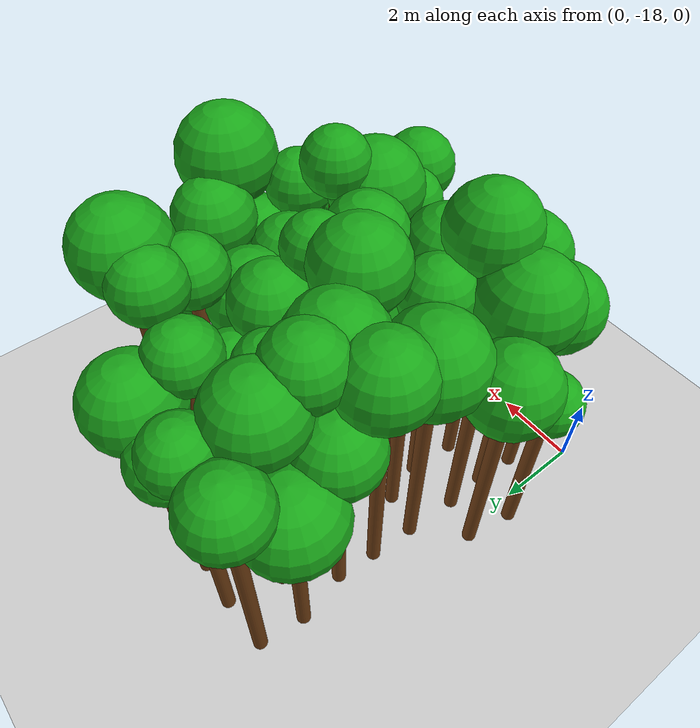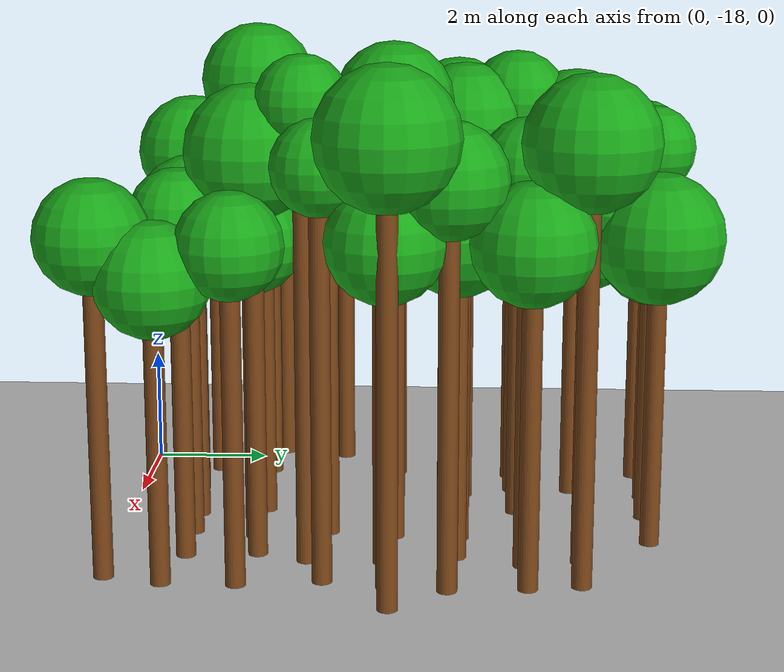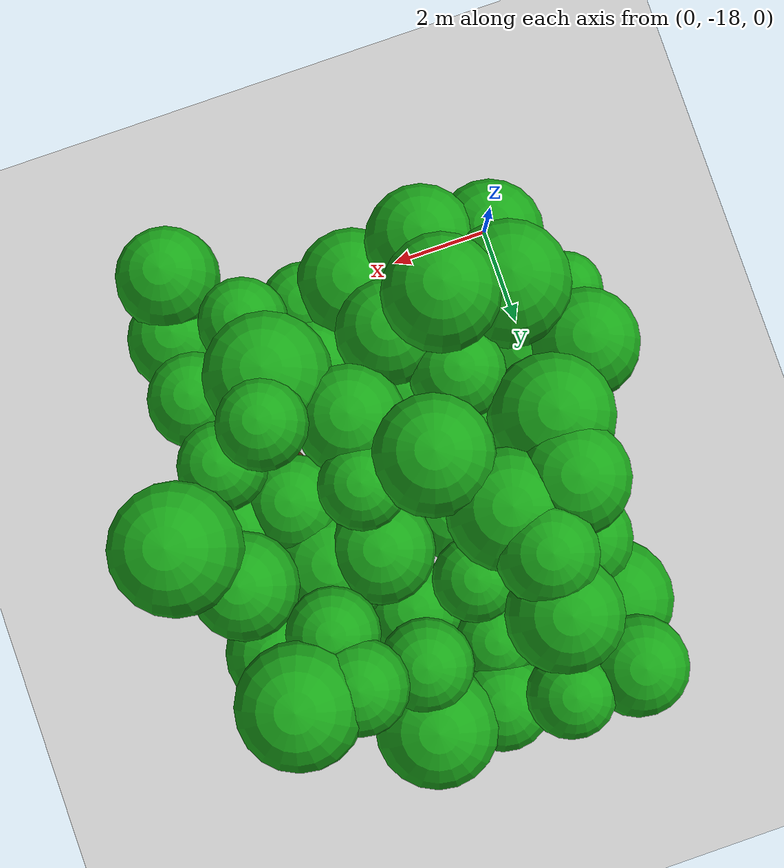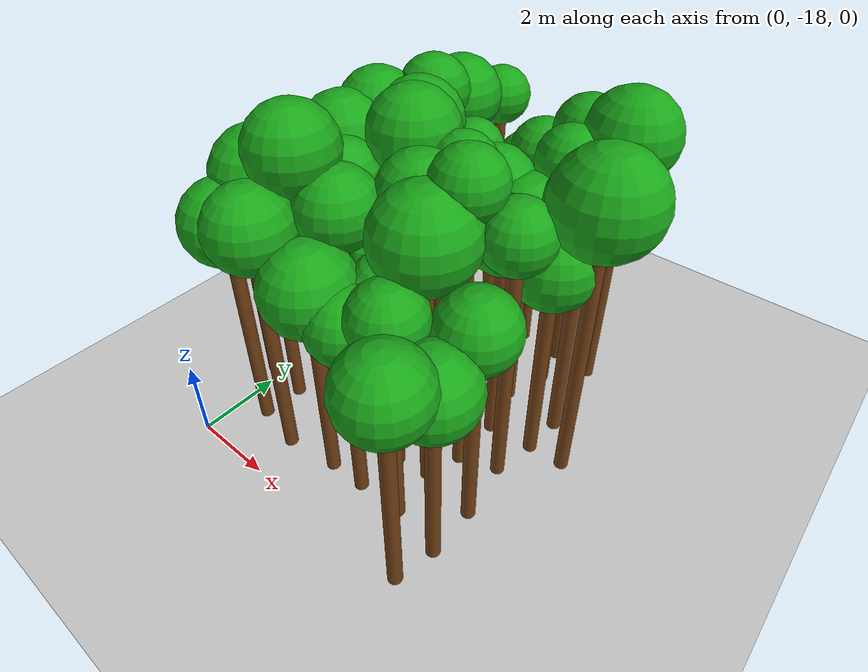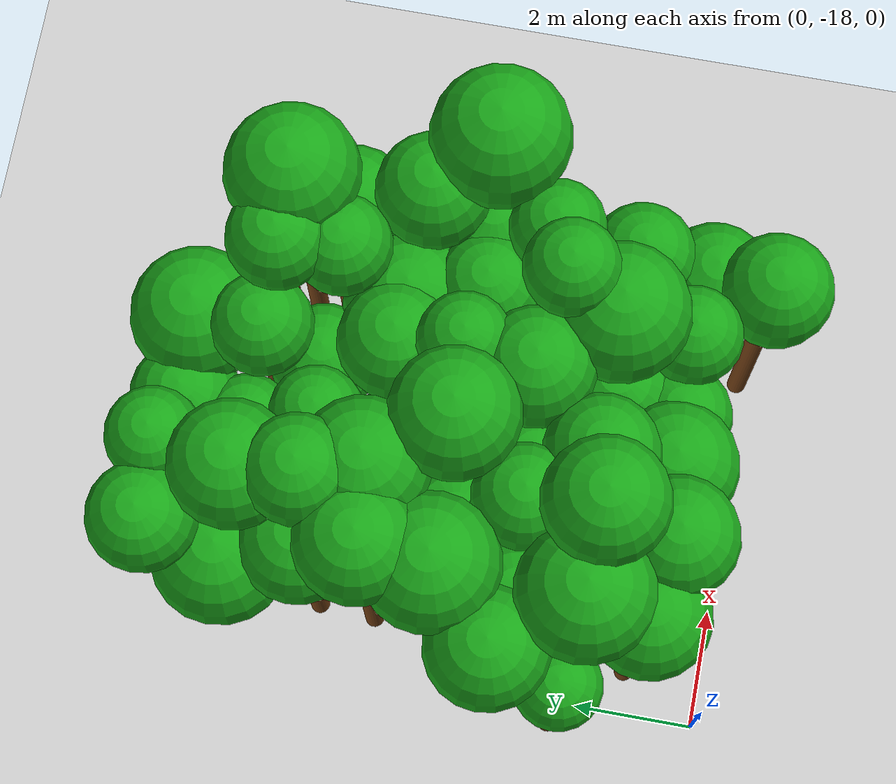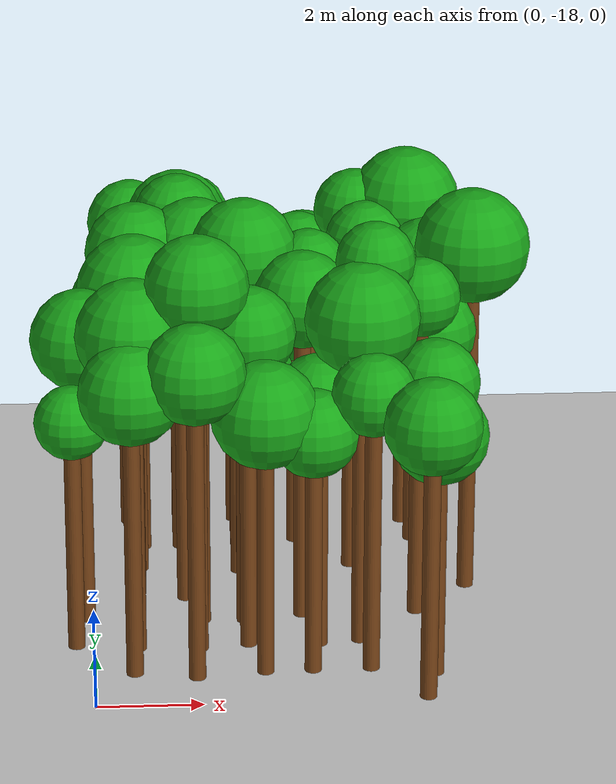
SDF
<sdf version="1.6">
 <world name="forest_world">
  <include><uri>model://sun</uri></include>
  <include><uri>model://ground_plane</uri></include>
  <model name="tree_1490_trunk">
   <static>true</static>
   <pose>-0.35 -15.59 2.12 0 0 0</pose>
   <link name="link">
    <collision name="collision">
     <geometry><cylinder><radius>0.16</radius><length>4.23</length></cylinder></geometry>
    </collision>
    <visual name="visual">
     <geometry><cylinder><radius>0.16</radius><length>4.23</length></cylinder></geometry>
     <material><ambient>0.35 0.20 0.05 1</ambient><diffuse>0.45 0.25 0.08 1</diffuse></material>
    </visual>
   </link>
  </model>
  <model name="tree_1490_leaf">
   <static>true</static>
   <pose>-0.35 -15.59 4.66 0 0 0</pose>
   <link name="link">
    <collision name="collision"><geometry><sphere><radius>0.70</radius></sphere></geometry></collision>
    <visual name="visual">
     <geometry><sphere><radius>0.70</radius></sphere></geometry>
     <material><ambient>0.05 0.45 0.05 1</ambient><diffuse>0.10 0.65 0.10 1</diffuse></material>
    </visual>
   </link>
  </model>
  <model name="tree_1491_trunk">
   <static>true</static>
   <pose>-0.15 -14.46 2.63 0 0 0</pose>
   <link name="link">
    <collision name="collision">
     <geometry><cylinder><radius>0.16</radius><length>5.27</length></cylinder></geometry>
    </collision>
    <visual name="visual">
     <geometry><cylinder><radius>0.16</radius><length>5.27</length></cylinder></geometry>
     <material><ambient>0.35 0.20 0.05 1</ambient><diffuse>0.45 0.25 0.08 1</diffuse></material>
    </visual>
   </link>
  </model>
  <model name="tree_1491_leaf">
   <static>true</static>
   <pose>-0.15 -14.46 5.84 0 0 0</pose>
   <link name="link">
    <collision name="collision"><geometry><sphere><radius>0.96</radius></sphere></geometry></collision>
    <visual name="visual">
     <geometry><sphere><radius>0.96</radius></sphere></geometry>
     <material><ambient>0.05 0.45 0.05 1</ambient><diffuse>0.10 0.65 0.10 1</diffuse></material>
    </visual>
   </link>
  </model>
  <model name="tree_1538_trunk">
   <static>true</static>
   <pose>0.74 -16.73 2.57 0 0 0</pose>
   <link name="link">
    <collision name="collision">
     <geometry><cylinder><radius>0.16</radius><length>5.14</length></cylinder></geometry>
    </collision>
    <visual name="visual">
     <geometry><cylinder><radius>0.16</radius><length>5.14</length></cylinder></geometry>
     <material><ambient>0.35 0.20 0.05 1</ambient><diffuse>0.45 0.25 0.08 1</diffuse></material>
    </visual>
   </link>
  </model>
  <model name="tree_1538_leaf">
   <static>true</static>
   <pose>0.74 -16.73 5.72 0 0 0</pose>
   <link name="link">
    <collision name="collision"><geometry><sphere><radius>0.96</radius></sphere></geometry></collision>
    <visual name="visual">
     <geometry><sphere><radius>0.96</radius></sphere></geometry>
     <material><ambient>0.05 0.45 0.05 1</ambient><diffuse>0.10 0.65 0.10 1</diffuse></material>
    </visual>
   </link>
  </model>
  <model name="tree_1539_trunk">
   <static>true</static>
   <pose>0.81 -15.74 2.90 0 0 0</pose>
   <link name="link">
    <collision name="collision">
     <geometry><cylinder><radius>0.16</radius><length>5.79</length></cylinder></geometry>
    </collision>
    <visual name="visual">
     <geometry><cylinder><radius>0.16</radius><length>5.79</length></cylinder></geometry>
     <material><ambient>0.35 0.20 0.05 1</ambient><diffuse>0.45 0.25 0.08 1</diffuse></material>
    </visual>
   </link>
  </model>
  <model name="tree_1539_leaf">
   <static>true</static>
   <pose>0.81 -15.74 6.43 0 0 0</pose>
   <link name="link">
    <collision name="collision"><geometry><sphere><radius>1.07</radius></sphere></geometry></collision>
    <visual name="visual">
     <geometry><sphere><radius>1.07</radius></sphere></geometry>
     <material><ambient>0.05 0.45 0.05 1</ambient><diffuse>0.10 0.65 0.10 1</diffuse></material>
    </visual>
   </link>
  </model>
  <model name="tree_1540_trunk">
   <static>true</static>
   <pose>0.77 -14.73 2.34 0 0 0</pose>
   <link name="link">
    <collision name="collision">
     <geometry><cylinder><radius>0.16</radius><length>4.68</length></cylinder></geometry>
    </collision>
    <visual name="visual">
     <geometry><cylinder><radius>0.16</radius><length>4.68</length></cylinder></geometry>
     <material><ambient>0.35 0.20 0.05 1</ambient><diffuse>0.45 0.25 0.08 1</diffuse></material>
    </visual>
   </link>
  </model>
  <model name="tree_1540_leaf">
   <static>true</static>
   <pose>0.77 -14.73 5.23 0 0 0</pose>
   <link name="link">
    <collision name="collision"><geometry><sphere><radius>0.91</radius></sphere></geometry></collision>
    <visual name="visual">
     <geometry><sphere><radius>0.91</radius></sphere></geometry>
     <material><ambient>0.05 0.45 0.05 1</ambient><diffuse>0.10 0.65 0.10 1</diffuse></material>
    </visual>
   </link>
  </model>
  <model name="tree_1541_trunk">
   <static>true</static>
   <pose>0.84 -13.44 2.88 0 0 0</pose>
   <link name="link">
    <collision name="collision">
     <geometry><cylinder><radius>0.16</radius><length>5.75</length></cylinder></geometry>
    </collision>
    <visual name="visual">
     <geometry><cylinder><radius>0.16</radius><length>5.75</length></cylinder></geometry>
     <material><ambient>0.35 0.20 0.05 1</ambient><diffuse>0.45 0.25 0.08 1</diffuse></material>
    </visual>
   </link>
  </model>
  <model name="tree_1541_leaf">
   <static>true</static>
   <pose>0.84 -13.44 6.39 0 0 0</pose>
   <link name="link">
    <collision name="collision"><geometry><sphere><radius>1.07</radius></sphere></geometry></collision>
    <visual name="visual">
     <geometry><sphere><radius>1.07</radius></sphere></geometry>
     <material><ambient>0.05 0.45 0.05 1</ambient><diffuse>0.10 0.65 0.10 1</diffuse></material>
    </visual>
   </link>
  </model>
  <model name="tree_1542_trunk">
   <static>true</static>
   <pose>0.90 -12.36 3.08 0 0 0</pose>
   <link name="link">
    <collision name="collision">
     <geometry><cylinder><radius>0.16</radius><length>6.16</length></cylinder></geometry>
    </collision>
    <visual name="visual">
     <geometry><cylinder><radius>0.16</radius><length>6.16</length></cylinder></geometry>
     <material><ambient>0.35 0.20 0.05 1</ambient><diffuse>0.45 0.25 0.08 1</diffuse></material>
    </visual>
   </link>
  </model>
  <model name="tree_1542_leaf">
   <static>true</static>
   <pose>0.90 -12.36 6.73 0 0 0</pose>
   <link name="link">
    <collision name="collision"><geometry><sphere><radius>0.96</radius></sphere></geometry></collision>
    <visual name="visual">
     <geometry><sphere><radius>0.96</radius></sphere></geometry>
     <material><ambient>0.05 0.45 0.05 1</ambient><diffuse>0.10 0.65 0.10 1</diffuse></material>
    </visual>
   </link>
  </model>
  <model name="tree_1543_trunk">
   <static>true</static>
   <pose>0.97 -11.39 2.42 0 0 0</pose>
   <link name="link">
    <collision name="collision">
     <geometry><cylinder><radius>0.16</radius><length>4.83</length></cylinder></geometry>
    </collision>
    <visual name="visual">
     <geometry><cylinder><radius>0.16</radius><length>4.83</length></cylinder></geometry>
     <material><ambient>0.35 0.20 0.05 1</ambient><diffuse>0.45 0.25 0.08 1</diffuse></material>
    </visual>
   </link>
  </model>
  <model name="tree_1543_leaf">
   <static>true</static>
   <pose>0.97 -11.39 5.40 0 0 0</pose>
   <link name="link">
    <collision name="collision"><geometry><sphere><radius>0.94</radius></sphere></geometry></collision>
    <visual name="visual">
     <geometry><sphere><radius>0.94</radius></sphere></geometry>
     <material><ambient>0.05 0.45 0.05 1</ambient><diffuse>0.10 0.65 0.10 1</diffuse></material>
    </visual>
   </link>
  </model>
  <model name="tree_1544_trunk">
   <static>true</static>
   <pose>0.70 -10.19 2.05 0 0 0</pose>
   <link name="link">
    <collision name="collision">
     <geometry><cylinder><radius>0.16</radius><length>4.11</length></cylinder></geometry>
    </collision>
    <visual name="visual">
     <geometry><cylinder><radius>0.16</radius><length>4.11</length></cylinder></geometry>
     <material><ambient>0.35 0.20 0.05 1</ambient><diffuse>0.45 0.25 0.08 1</diffuse></material>
    </visual>
   </link>
  </model>
  <model name="tree_1544_leaf">
   <static>true</static>
   <pose>0.70 -10.19 4.76 0 0 0</pose>
   <link name="link">
    <collision name="collision"><geometry><sphere><radius>1.09</radius></sphere></geometry></collision>
    <visual name="visual">
     <geometry><sphere><radius>1.09</radius></sphere></geometry>
     <material><ambient>0.05 0.45 0.05 1</ambient><diffuse>0.10 0.65 0.10 1</diffuse></material>
    </visual>
   </link>
  </model>
  <model name="tree_1545_trunk">
   <static>true</static>
   <pose>0.83 -9.12 2.79 0 0 0</pose>
   <link name="link">
    <collision name="collision">
     <geometry><cylinder><radius>0.16</radius><length>5.58</length></cylinder></geometry>
    </collision>
    <visual name="visual">
     <geometry><cylinder><radius>0.16</radius><length>5.58</length></cylinder></geometry>
     <material><ambient>0.35 0.20 0.05 1</ambient><diffuse>0.45 0.25 0.08 1</diffuse></material>
    </visual>
   </link>
  </model>
  <model name="tree_1545_leaf">
   <static>true</static>
   <pose>0.83 -9.12 6.09 0 0 0</pose>
   <link name="link">
    <collision name="collision"><geometry><sphere><radius>0.85</radius></sphere></geometry></collision>
    <visual name="visual">
     <geometry><sphere><radius>0.85</radius></sphere></geometry>
     <material><ambient>0.05 0.45 0.05 1</ambient><diffuse>0.10 0.65 0.10 1</diffuse></material>
    </visual>
   </link>
  </model>
  <model name="tree_1588_trunk">
   <static>true</static>
   <pose>1.90 -16.94 2.81 0 0 0</pose>
   <link name="link">
    <collision name="collision">
     <geometry><cylinder><radius>0.16</radius><length>5.61</length></cylinder></geometry>
    </collision>
    <visual name="visual">
     <geometry><cylinder><radius>0.16</radius><length>5.61</length></cylinder></geometry>
     <material><ambient>0.35 0.20 0.05 1</ambient><diffuse>0.45 0.25 0.08 1</diffuse></material>
    </visual>
   </link>
  </model>
  <model name="tree_1588_leaf">
   <static>true</static>
   <pose>1.90 -16.94 6.17 0 0 0</pose>
   <link name="link">
    <collision name="collision"><geometry><sphere><radius>0.94</radius></sphere></geometry></collision>
    <visual name="visual">
     <geometry><sphere><radius>0.94</radius></sphere></geometry>
     <material><ambient>0.05 0.45 0.05 1</ambient><diffuse>0.10 0.65 0.10 1</diffuse></material>
    </visual>
   </link>
  </model>
  <model name="tree_1589_trunk">
   <static>true</static>
   <pose>1.98 -15.79 3.41 0 0 0</pose>
   <link name="link">
    <collision name="collision">
     <geometry><cylinder><radius>0.16</radius><length>6.82</length></cylinder></geometry>
    </collision>
    <visual name="visual">
     <geometry><cylinder><radius>0.16</radius><length>6.82</length></cylinder></geometry>
     <material><ambient>0.35 0.20 0.05 1</ambient><diffuse>0.45 0.25 0.08 1</diffuse></material>
    </visual>
   </link>
  </model>
  <model name="tree_1589_leaf">
   <static>true</static>
   <pose>1.98 -15.79 7.40 0 0 0</pose>
   <link name="link">
    <collision name="collision"><geometry><sphere><radius>0.96</radius></sphere></geometry></collision>
    <visual name="visual">
     <geometry><sphere><radius>0.96</radius></sphere></geometry>
     <material><ambient>0.05 0.45 0.05 1</ambient><diffuse>0.10 0.65 0.10 1</diffuse></material>
    </visual>
   </link>
  </model>
  <model name="tree_1590_trunk">
   <static>true</static>
   <pose>2.06 -14.63 2.94 0 0 0</pose>
   <link name="link">
    <collision name="collision">
     <geometry><cylinder><radius>0.16</radius><length>5.88</length></cylinder></geometry>
    </collision>
    <visual name="visual">
     <geometry><cylinder><radius>0.16</radius><length>5.88</length></cylinder></geometry>
     <material><ambient>0.35 0.20 0.05 1</ambient><diffuse>0.45 0.25 0.08 1</diffuse></material>
    </visual>
   </link>
  </model>
  <model name="tree_1590_leaf">
   <static>true</static>
   <pose>2.06 -14.63 6.37 0 0 0</pose>
   <link name="link">
    <collision name="collision"><geometry><sphere><radius>0.81</radius></sphere></geometry></collision>
    <visual name="visual">
     <geometry><sphere><radius>0.81</radius></sphere></geometry>
     <material><ambient>0.05 0.45 0.05 1</ambient><diffuse>0.10 0.65 0.10 1</diffuse></material>
    </visual>
   </link>
  </model>
  <model name="tree_1591_trunk">
   <static>true</static>
   <pose>1.76 -13.66 2.14 0 0 0</pose>
   <link name="link">
    <collision name="collision">
     <geometry><cylinder><radius>0.16</radius><length>4.27</length></cylinder></geometry>
    </collision>
    <visual name="visual">
     <geometry><cylinder><radius>0.16</radius><length>4.27</length></cylinder></geometry>
     <material><ambient>0.35 0.20 0.05 1</ambient><diffuse>0.45 0.25 0.08 1</diffuse></material>
    </visual>
   </link>
  </model>
  <model name="tree_1591_leaf">
   <static>true</static>
   <pose>1.76 -13.66 4.88 0 0 0</pose>
   <link name="link">
    <collision name="collision"><geometry><sphere><radius>1.01</radius></sphere></geometry></collision>
    <visual name="visual">
     <geometry><sphere><radius>1.01</radius></sphere></geometry>
     <material><ambient>0.05 0.45 0.05 1</ambient><diffuse>0.10 0.65 0.10 1</diffuse></material>
    </visual>
   </link>
  </model>
  <model name="tree_1592_trunk">
   <static>true</static>
   <pose>2.05 -12.24 3.05 0 0 0</pose>
   <link name="link">
    <collision name="collision">
     <geometry><cylinder><radius>0.16</radius><length>6.09</length></cylinder></geometry>
    </collision>
    <visual name="visual">
     <geometry><cylinder><radius>0.16</radius><length>6.09</length></cylinder></geometry>
     <material><ambient>0.35 0.20 0.05 1</ambient><diffuse>0.45 0.25 0.08 1</diffuse></material>
    </visual>
   </link>
  </model>
  <model name="tree_1592_leaf">
   <static>true</static>
   <pose>2.05 -12.24 6.70 0 0 0</pose>
   <link name="link">
    <collision name="collision"><geometry><sphere><radius>1.02</radius></sphere></geometry></collision>
    <visual name="visual">
     <geometry><sphere><radius>1.02</radius></sphere></geometry>
     <material><ambient>0.05 0.45 0.05 1</ambient><diffuse>0.10 0.65 0.10 1</diffuse></material>
    </visual>
   </link>
  </model>
  <model name="tree_1593_trunk">
   <static>true</static>
   <pose>1.72 -11.36 3.27 0 0 0</pose>
   <link name="link">
    <collision name="collision">
     <geometry><cylinder><radius>0.16</radius><length>6.54</length></cylinder></geometry>
    </collision>
    <visual name="visual">
     <geometry><cylinder><radius>0.16</radius><length>6.54</length></cylinder></geometry>
     <material><ambient>0.35 0.20 0.05 1</ambient><diffuse>0.45 0.25 0.08 1</diffuse></material>
    </visual>
   </link>
  </model>
  <model name="tree_1593_leaf">
   <static>true</static>
   <pose>1.72 -11.36 7.05 0 0 0</pose>
   <link name="link">
    <collision name="collision"><geometry><sphere><radius>0.84</radius></sphere></geometry></collision>
    <visual name="visual">
     <geometry><sphere><radius>0.84</radius></sphere></geometry>
     <material><ambient>0.05 0.45 0.05 1</ambient><diffuse>0.10 0.65 0.10 1</diffuse></material>
    </visual>
   </link>
  </model>
  <model name="tree_1594_trunk">
   <static>true</static>
   <pose>1.73 -10.34 3.01 0 0 0</pose>
   <link name="link">
    <collision name="collision">
     <geometry><cylinder><radius>0.16</radius><length>6.02</length></cylinder></geometry>
    </collision>
    <visual name="visual">
     <geometry><cylinder><radius>0.16</radius><length>6.02</length></cylinder></geometry>
     <material><ambient>0.35 0.20 0.05 1</ambient><diffuse>0.45 0.25 0.08 1</diffuse></material>
    </visual>
   </link>
  </model>
  <model name="tree_1594_leaf">
   <static>true</static>
   <pose>1.73 -10.34 6.60 0 0 0</pose>
   <link name="link">
    <collision name="collision"><geometry><sphere><radius>0.98</radius></sphere></geometry></collision>
    <visual name="visual">
     <geometry><sphere><radius>0.98</radius></sphere></geometry>
     <material><ambient>0.05 0.45 0.05 1</ambient><diffuse>0.10 0.65 0.10 1</diffuse></material>
    </visual>
   </link>
  </model>
  <model name="tree_1595_trunk">
   <static>true</static>
   <pose>2.03 -9.06 2.91 0 0 0</pose>
   <link name="link">
    <collision name="collision">
     <geometry><cylinder><radius>0.16</radius><length>5.82</length></cylinder></geometry>
    </collision>
    <visual name="visual">
     <geometry><cylinder><radius>0.16</radius><length>5.82</length></cylinder></geometry>
     <material><ambient>0.35 0.20 0.05 1</ambient><diffuse>0.45 0.25 0.08 1</diffuse></material>
    </visual>
   </link>
  </model>
  <model name="tree_1595_leaf">
   <static>true</static>
   <pose>2.03 -9.06 6.26 0 0 0</pose>
   <link name="link">
    <collision name="collision"><geometry><sphere><radius>0.74</radius></sphere></geometry></collision>
    <visual name="visual">
     <geometry><sphere><radius>0.74</radius></sphere></geometry>
     <material><ambient>0.05 0.45 0.05 1</ambient><diffuse>0.10 0.65 0.10 1</diffuse></material>
    </visual>
   </link>
  </model>
  <model name="tree_1639_trunk">
   <static>true</static>
   <pose>3.18 -16.76 2.33 0 0 0</pose>
   <link name="link">
    <collision name="collision">
     <geometry><cylinder><radius>0.16</radius><length>4.66</length></cylinder></geometry>
    </collision>
    <visual name="visual">
     <geometry><cylinder><radius>0.16</radius><length>4.66</length></cylinder></geometry>
     <material><ambient>0.35 0.20 0.05 1</ambient><diffuse>0.45 0.25 0.08 1</diffuse></material>
    </visual>
   </link>
  </model>
  <model name="tree_1639_leaf">
   <static>true</static>
   <pose>3.18 -16.76 5.27 0 0 0</pose>
   <link name="link">
    <collision name="collision"><geometry><sphere><radius>1.01</radius></sphere></geometry></collision>
    <visual name="visual">
     <geometry><sphere><radius>1.01</radius></sphere></geometry>
     <material><ambient>0.05 0.45 0.05 1</ambient><diffuse>0.10 0.65 0.10 1</diffuse></material>
    </visual>
   </link>
  </model>
  <model name="tree_1640_trunk">
   <static>true</static>
   <pose>2.91 -15.63 2.93 0 0 0</pose>
   <link name="link">
    <collision name="collision">
     <geometry><cylinder><radius>0.16</radius><length>5.87</length></cylinder></geometry>
    </collision>
    <visual name="visual">
     <geometry><cylinder><radius>0.16</radius><length>5.87</length></cylinder></geometry>
     <material><ambient>0.35 0.20 0.05 1</ambient><diffuse>0.45 0.25 0.08 1</diffuse></material>
    </visual>
   </link>
  </model>
  <model name="tree_1640_leaf">
   <static>true</static>
   <pose>2.91 -15.63 6.40 0 0 0</pose>
   <link name="link">
    <collision name="collision"><geometry><sphere><radius>0.89</radius></sphere></geometry></collision>
    <visual name="visual">
     <geometry><sphere><radius>0.89</radius></sphere></geometry>
     <material><ambient>0.05 0.45 0.05 1</ambient><diffuse>0.10 0.65 0.10 1</diffuse></material>
    </visual>
   </link>
  </model>
  <model name="tree_1641_trunk">
   <static>true</static>
   <pose>2.88 -14.65 2.26 0 0 0</pose>
   <link name="link">
    <collision name="collision">
     <geometry><cylinder><radius>0.16</radius><length>4.53</length></cylinder></geometry>
    </collision>
    <visual name="visual">
     <geometry><cylinder><radius>0.16</radius><length>4.53</length></cylinder></geometry>
     <material><ambient>0.35 0.20 0.05 1</ambient><diffuse>0.45 0.25 0.08 1</diffuse></material>
    </visual>
   </link>
  </model>
  <model name="tree_1641_leaf">
   <static>true</static>
   <pose>2.88 -14.65 5.09 0 0 0</pose>
   <link name="link">
    <collision name="collision"><geometry><sphere><radius>0.94</radius></sphere></geometry></collision>
    <visual name="visual">
     <geometry><sphere><radius>0.94</radius></sphere></geometry>
     <material><ambient>0.05 0.45 0.05 1</ambient><diffuse>0.10 0.65 0.10 1</diffuse></material>
    </visual>
   </link>
  </model>
  <model name="tree_1642_trunk">
   <static>true</static>
   <pose>2.92 -13.43 3.27 0 0 0</pose>
   <link name="link">
    <collision name="collision">
     <geometry><cylinder><radius>0.16</radius><length>6.54</length></cylinder></geometry>
    </collision>
    <visual name="visual">
     <geometry><cylinder><radius>0.16</radius><length>6.54</length></cylinder></geometry>
     <material><ambient>0.35 0.20 0.05 1</ambient><diffuse>0.45 0.25 0.08 1</diffuse></material>
    </visual>
   </link>
  </model>
  <model name="tree_1642_leaf">
   <static>true</static>
   <pose>2.92 -13.43 7.15 0 0 0</pose>
   <link name="link">
    <collision name="collision"><geometry><sphere><radius>1.00</radius></sphere></geometry></collision>
    <visual name="visual">
     <geometry><sphere><radius>1.00</radius></sphere></geometry>
     <material><ambient>0.05 0.45 0.05 1</ambient><diffuse>0.10 0.65 0.10 1</diffuse></material>
    </visual>
   </link>
  </model>
  <model name="tree_1643_trunk">
   <static>true</static>
   <pose>2.84 -12.52 2.36 0 0 0</pose>
   <link name="link">
    <collision name="collision">
     <geometry><cylinder><radius>0.16</radius><length>4.72</length></cylinder></geometry>
    </collision>
    <visual name="visual">
     <geometry><cylinder><radius>0.16</radius><length>4.72</length></cylinder></geometry>
     <material><ambient>0.35 0.20 0.05 1</ambient><diffuse>0.45 0.25 0.08 1</diffuse></material>
    </visual>
   </link>
  </model>
  <model name="tree_1643_leaf">
   <static>true</static>
   <pose>2.84 -12.52 5.21 0 0 0</pose>
   <link name="link">
    <collision name="collision"><geometry><sphere><radius>0.82</radius></sphere></geometry></collision>
    <visual name="visual">
     <geometry><sphere><radius>0.82</radius></sphere></geometry>
     <material><ambient>0.05 0.45 0.05 1</ambient><diffuse>0.10 0.65 0.10 1</diffuse></material>
    </visual>
   </link>
  </model>
  <model name="tree_1644_trunk">
   <static>true</static>
   <pose>2.87 -11.33 2.74 0 0 0</pose>
   <link name="link">
    <collision name="collision">
     <geometry><cylinder><radius>0.16</radius><length>5.48</length></cylinder></geometry>
    </collision>
    <visual name="visual">
     <geometry><cylinder><radius>0.16</radius><length>5.48</length></cylinder></geometry>
     <material><ambient>0.35 0.20 0.05 1</ambient><diffuse>0.45 0.25 0.08 1</diffuse></material>
    </visual>
   </link>
  </model>
  <model name="tree_1644_leaf">
   <static>true</static>
   <pose>2.87 -11.33 5.92 0 0 0</pose>
   <link name="link">
    <collision name="collision"><geometry><sphere><radius>0.73</radius></sphere></geometry></collision>
    <visual name="visual">
     <geometry><sphere><radius>0.73</radius></sphere></geometry>
     <material><ambient>0.05 0.45 0.05 1</ambient><diffuse>0.10 0.65 0.10 1</diffuse></material>
    </visual>
   </link>
  </model>
  <model name="tree_1645_trunk">
   <static>true</static>
   <pose>2.83 -10.18 2.14 0 0 0</pose>
   <link name="link">
    <collision name="collision">
     <geometry><cylinder><radius>0.16</radius><length>4.27</length></cylinder></geometry>
    </collision>
    <visual name="visual">
     <geometry><cylinder><radius>0.16</radius><length>4.27</length></cylinder></geometry>
     <material><ambient>0.35 0.20 0.05 1</ambient><diffuse>0.45 0.25 0.08 1</diffuse></material>
    </visual>
   </link>
  </model>
  <model name="tree_1645_leaf">
   <static>true</static>
   <pose>2.83 -10.18 4.73 0 0 0</pose>
   <link name="link">
    <collision name="collision"><geometry><sphere><radius>0.76</radius></sphere></geometry></collision>
    <visual name="visual">
     <geometry><sphere><radius>0.76</radius></sphere></geometry>
     <material><ambient>0.05 0.45 0.05 1</ambient><diffuse>0.10 0.65 0.10 1</diffuse></material>
    </visual>
   </link>
  </model>
  <model name="tree_1646_trunk">
   <static>true</static>
   <pose>3.07 -9.13 2.08 0 0 0</pose>
   <link name="link">
    <collision name="collision">
     <geometry><cylinder><radius>0.16</radius><length>4.15</length></cylinder></geometry>
    </collision>
    <visual name="visual">
     <geometry><cylinder><radius>0.16</radius><length>4.15</length></cylinder></geometry>
     <material><ambient>0.35 0.20 0.05 1</ambient><diffuse>0.45 0.25 0.08 1</diffuse></material>
    </visual>
   </link>
  </model>
  <model name="tree_1646_leaf">
   <static>true</static>
   <pose>3.07 -9.13 4.68 0 0 0</pose>
   <link name="link">
    <collision name="collision"><geometry><sphere><radius>0.88</radius></sphere></geometry></collision>
    <visual name="visual">
     <geometry><sphere><radius>0.88</radius></sphere></geometry>
     <material><ambient>0.05 0.45 0.05 1</ambient><diffuse>0.10 0.65 0.10 1</diffuse></material>
    </visual>
   </link>
  </model>
  <model name="tree_1694_trunk">
   <static>true</static>
   <pose>4.07 -16.74 2.19 0 0 0</pose>
   <link name="link">
    <collision name="collision">
     <geometry><cylinder><radius>0.16</radius><length>4.37</length></cylinder></geometry>
    </collision>
    <visual name="visual">
     <geometry><cylinder><radius>0.16</radius><length>4.37</length></cylinder></geometry>
     <material><ambient>0.35 0.20 0.05 1</ambient><diffuse>0.45 0.25 0.08 1</diffuse></material>
    </visual>
   </link>
  </model>
  <model name="tree_1694_leaf">
   <static>true</static>
   <pose>4.07 -16.74 4.87 0 0 0</pose>
   <link name="link">
    <collision name="collision"><geometry><sphere><radius>0.83</radius></sphere></geometry></collision>
    <visual name="visual">
     <geometry><sphere><radius>0.83</radius></sphere></geometry>
     <material><ambient>0.05 0.45 0.05 1</ambient><diffuse>0.10 0.65 0.10 1</diffuse></material>
    </visual>
   </link>
  </model>
  <model name="tree_1695_trunk">
   <static>true</static>
   <pose>4.24 -15.69 2.27 0 0 0</pose>
   <link name="link">
    <collision name="collision">
     <geometry><cylinder><radius>0.16</radius><length>4.53</length></cylinder></geometry>
    </collision>
    <visual name="visual">
     <geometry><cylinder><radius>0.16</radius><length>4.53</length></cylinder></geometry>
     <material><ambient>0.35 0.20 0.05 1</ambient><diffuse>0.45 0.25 0.08 1</diffuse></material>
    </visual>
   </link>
  </model>
  <model name="tree_1695_leaf">
   <static>true</static>
   <pose>4.24 -15.69 5.06 0 0 0</pose>
   <link name="link">
    <collision name="collision"><geometry><sphere><radius>0.88</radius></sphere></geometry></collision>
    <visual name="visual">
     <geometry><sphere><radius>0.88</radius></sphere></geometry>
     <material><ambient>0.05 0.45 0.05 1</ambient><diffuse>0.10 0.65 0.10 1</diffuse></material>
    </visual>
   </link>
  </model>
  <model name="tree_1696_trunk">
   <static>true</static>
   <pose>3.98 -14.46 3.01 0 0 0</pose>
   <link name="link">
    <collision name="collision">
     <geometry><cylinder><radius>0.16</radius><length>6.02</length></cylinder></geometry>
    </collision>
    <visual name="visual">
     <geometry><cylinder><radius>0.16</radius><length>6.02</length></cylinder></geometry>
     <material><ambient>0.35 0.20 0.05 1</ambient><diffuse>0.45 0.25 0.08 1</diffuse></material>
    </visual>
   </link>
  </model>
  <model name="tree_1696_leaf">
   <static>true</static>
   <pose>3.98 -14.46 6.57 0 0 0</pose>
   <link name="link">
    <collision name="collision"><geometry><sphere><radius>0.92</radius></sphere></geometry></collision>
    <visual name="visual">
     <geometry><sphere><radius>0.92</radius></sphere></geometry>
     <material><ambient>0.05 0.45 0.05 1</ambient><diffuse>0.10 0.65 0.10 1</diffuse></material>
    </visual>
   </link>
  </model>
  <model name="tree_1697_trunk">
   <static>true</static>
   <pose>4.14 -13.36 3.17 0 0 0</pose>
   <link name="link">
    <collision name="collision">
     <geometry><cylinder><radius>0.16</radius><length>6.33</length></cylinder></geometry>
    </collision>
    <visual name="visual">
     <geometry><cylinder><radius>0.16</radius><length>6.33</length></cylinder></geometry>
     <material><ambient>0.35 0.20 0.05 1</ambient><diffuse>0.45 0.25 0.08 1</diffuse></material>
    </visual>
   </link>
  </model>
  <model name="tree_1697_leaf">
   <static>true</static>
   <pose>4.14 -13.36 6.77 0 0 0</pose>
   <link name="link">
    <collision name="collision"><geometry><sphere><radius>0.73</radius></sphere></geometry></collision>
    <visual name="visual">
     <geometry><sphere><radius>0.73</radius></sphere></geometry>
     <material><ambient>0.05 0.45 0.05 1</ambient><diffuse>0.10 0.65 0.10 1</diffuse></material>
    </visual>
   </link>
  </model>
  <model name="tree_1698_trunk">
   <static>true</static>
   <pose>4.20 -12.29 2.67 0 0 0</pose>
   <link name="link">
    <collision name="collision">
     <geometry><cylinder><radius>0.16</radius><length>5.33</length></cylinder></geometry>
    </collision>
    <visual name="visual">
     <geometry><cylinder><radius>0.16</radius><length>5.33</length></cylinder></geometry>
     <material><ambient>0.35 0.20 0.05 1</ambient><diffuse>0.45 0.25 0.08 1</diffuse></material>
    </visual>
   </link>
  </model>
  <model name="tree_1698_leaf">
   <static>true</static>
   <pose>4.20 -12.29 5.88 0 0 0</pose>
   <link name="link">
    <collision name="collision"><geometry><sphere><radius>0.91</radius></sphere></geometry></collision>
    <visual name="visual">
     <geometry><sphere><radius>0.91</radius></sphere></geometry>
     <material><ambient>0.05 0.45 0.05 1</ambient><diffuse>0.10 0.65 0.10 1</diffuse></material>
    </visual>
   </link>
  </model>
  <model name="tree_1699_trunk">
   <static>true</static>
   <pose>4.01 -11.17 2.16 0 0 0</pose>
   <link name="link">
    <collision name="collision">
     <geometry><cylinder><radius>0.16</radius><length>4.32</length></cylinder></geometry>
    </collision>
    <visual name="visual">
     <geometry><cylinder><radius>0.16</radius><length>4.32</length></cylinder></geometry>
     <material><ambient>0.35 0.20 0.05 1</ambient><diffuse>0.45 0.25 0.08 1</diffuse></material>
    </visual>
   </link>
  </model>
  <model name="tree_1699_leaf">
   <static>true</static>
   <pose>4.01 -11.17 4.84 0 0 0</pose>
   <link name="link">
    <collision name="collision"><geometry><sphere><radius>0.87</radius></sphere></geometry></collision>
    <visual name="visual">
     <geometry><sphere><radius>0.87</radius></sphere></geometry>
     <material><ambient>0.05 0.45 0.05 1</ambient><diffuse>0.10 0.65 0.10 1</diffuse></material>
    </visual>
   </link>
  </model>
  <model name="tree_1700_trunk">
   <static>true</static>
   <pose>4.11 -10.24 2.68 0 0 0</pose>
   <link name="link">
    <collision name="collision">
     <geometry><cylinder><radius>0.16</radius><length>5.37</length></cylinder></geometry>
    </collision>
    <visual name="visual">
     <geometry><cylinder><radius>0.16</radius><length>5.37</length></cylinder></geometry>
     <material><ambient>0.35 0.20 0.05 1</ambient><diffuse>0.45 0.25 0.08 1</diffuse></material>
    </visual>
   </link>
  </model>
  <model name="tree_1700_leaf">
   <static>true</static>
   <pose>4.11 -10.24 5.84 0 0 0</pose>
   <link name="link">
    <collision name="collision"><geometry><sphere><radius>0.80</radius></sphere></geometry></collision>
    <visual name="visual">
     <geometry><sphere><radius>0.80</radius></sphere></geometry>
     <material><ambient>0.05 0.45 0.05 1</ambient><diffuse>0.10 0.65 0.10 1</diffuse></material>
    </visual>
   </link>
  </model>
  <model name="tree_1701_trunk">
   <static>true</static>
   <pose>4.28 -9.14 2.25 0 0 0</pose>
   <link name="link">
    <collision name="collision">
     <geometry><cylinder><radius>0.16</radius><length>4.51</length></cylinder></geometry>
    </collision>
    <visual name="visual">
     <geometry><cylinder><radius>0.16</radius><length>4.51</length></cylinder></geometry>
     <material><ambient>0.35 0.20 0.05 1</ambient><diffuse>0.45 0.25 0.08 1</diffuse></material>
    </visual>
   </link>
  </model>
  <model name="tree_1701_leaf">
   <static>true</static>
   <pose>4.28 -9.14 5.15 0 0 0</pose>
   <link name="link">
    <collision name="collision"><geometry><sphere><radius>1.07</radius></sphere></geometry></collision>
    <visual name="visual">
     <geometry><sphere><radius>1.07</radius></sphere></geometry>
     <material><ambient>0.05 0.45 0.05 1</ambient><diffuse>0.10 0.65 0.10 1</diffuse></material>
    </visual>
   </link>
  </model>
  <model name="tree_1749_trunk">
   <static>true</static>
   <pose>5.16 -16.72 2.57 0 0 0</pose>
   <link name="link">
    <collision name="collision">
     <geometry><cylinder><radius>0.16</radius><length>5.13</length></cylinder></geometry>
    </collision>
    <visual name="visual">
     <geometry><cylinder><radius>0.16</radius><length>5.13</length></cylinder></geometry>
     <material><ambient>0.35 0.20 0.05 1</ambient><diffuse>0.45 0.25 0.08 1</diffuse></material>
    </visual>
   </link>
  </model>
  <model name="tree_1749_leaf">
   <static>true</static>
   <pose>5.16 -16.72 5.60 0 0 0</pose>
   <link name="link">
    <collision name="collision"><geometry><sphere><radius>0.78</radius></sphere></geometry></collision>
    <visual name="visual">
     <geometry><sphere><radius>0.78</radius></sphere></geometry>
     <material><ambient>0.05 0.45 0.05 1</ambient><diffuse>0.10 0.65 0.10 1</diffuse></material>
    </visual>
   </link>
  </model>
  <model name="tree_1750_trunk">
   <static>true</static>
   <pose>5.02 -15.56 2.98 0 0 0</pose>
   <link name="link">
    <collision name="collision">
     <geometry><cylinder><radius>0.16</radius><length>5.97</length></cylinder></geometry>
    </collision>
    <visual name="visual">
     <geometry><cylinder><radius>0.16</radius><length>5.97</length></cylinder></geometry>
     <material><ambient>0.35 0.20 0.05 1</ambient><diffuse>0.45 0.25 0.08 1</diffuse></material>
    </visual>
   </link>
  </model>
  <model name="tree_1750_leaf">
   <static>true</static>
   <pose>5.02 -15.56 6.61 0 0 0</pose>
   <link name="link">
    <collision name="collision"><geometry><sphere><radius>1.07</radius></sphere></geometry></collision>
    <visual name="visual">
     <geometry><sphere><radius>1.07</radius></sphere></geometry>
     <material><ambient>0.05 0.45 0.05 1</ambient><diffuse>0.10 0.65 0.10 1</diffuse></material>
    </visual>
   </link>
  </model>
  <model name="tree_1751_trunk">
   <static>true</static>
   <pose>5.31 -14.74 3.49 0 0 0</pose>
   <link name="link">
    <collision name="collision">
     <geometry><cylinder><radius>0.16</radius><length>6.98</length></cylinder></geometry>
    </collision>
    <visual name="visual">
     <geometry><cylinder><radius>0.16</radius><length>6.98</length></cylinder></geometry>
     <material><ambient>0.35 0.20 0.05 1</ambient><diffuse>0.45 0.25 0.08 1</diffuse></material>
    </visual>
   </link>
  </model>
  <model name="tree_1751_leaf">
   <static>true</static>
   <pose>5.31 -14.74 7.42 0 0 0</pose>
   <link name="link">
    <collision name="collision"><geometry><sphere><radius>0.74</radius></sphere></geometry></collision>
    <visual name="visual">
     <geometry><sphere><radius>0.74</radius></sphere></geometry>
     <material><ambient>0.05 0.45 0.05 1</ambient><diffuse>0.10 0.65 0.10 1</diffuse></material>
    </visual>
   </link>
  </model>
  <model name="tree_1752_trunk">
   <static>true</static>
   <pose>5.33 -13.51 2.61 0 0 0</pose>
   <link name="link">
    <collision name="collision">
     <geometry><cylinder><radius>0.16</radius><length>5.22</length></cylinder></geometry>
    </collision>
    <visual name="visual">
     <geometry><cylinder><radius>0.16</radius><length>5.22</length></cylinder></geometry>
     <material><ambient>0.35 0.20 0.05 1</ambient><diffuse>0.45 0.25 0.08 1</diffuse></material>
    </visual>
   </link>
  </model>
  <model name="tree_1752_leaf">
   <static>true</static>
   <pose>5.33 -13.51 5.72 0 0 0</pose>
   <link name="link">
    <collision name="collision"><geometry><sphere><radius>0.84</radius></sphere></geometry></collision>
    <visual name="visual">
     <geometry><sphere><radius>0.84</radius></sphere></geometry>
     <material><ambient>0.05 0.45 0.05 1</ambient><diffuse>0.10 0.65 0.10 1</diffuse></material>
    </visual>
   </link>
  </model>
  <model name="tree_1753_trunk">
   <static>true</static>
   <pose>5.04 -12.33 2.38 0 0 0</pose>
   <link name="link">
    <collision name="collision">
     <geometry><cylinder><radius>0.16</radius><length>4.77</length></cylinder></geometry>
    </collision>
    <visual name="visual">
     <geometry><cylinder><radius>0.16</radius><length>4.77</length></cylinder></geometry>
     <material><ambient>0.35 0.20 0.05 1</ambient><diffuse>0.45 0.25 0.08 1</diffuse></material>
    </visual>
   </link>
  </model>
  <model name="tree_1753_leaf">
   <static>true</static>
   <pose>5.04 -12.33 5.39 0 0 0</pose>
   <link name="link">
    <collision name="collision"><geometry><sphere><radius>1.04</radius></sphere></geometry></collision>
    <visual name="visual">
     <geometry><sphere><radius>1.04</radius></sphere></geometry>
     <material><ambient>0.05 0.45 0.05 1</ambient><diffuse>0.10 0.65 0.10 1</diffuse></material>
    </visual>
   </link>
  </model>
  <model name="tree_1754_trunk">
   <static>true</static>
   <pose>5.37 -11.26 2.99 0 0 0</pose>
   <link name="link">
    <collision name="collision">
     <geometry><cylinder><radius>0.16</radius><length>5.99</length></cylinder></geometry>
    </collision>
    <visual name="visual">
     <geometry><cylinder><radius>0.16</radius><length>5.99</length></cylinder></geometry>
     <material><ambient>0.35 0.20 0.05 1</ambient><diffuse>0.45 0.25 0.08 1</diffuse></material>
    </visual>
   </link>
  </model>
  <model name="tree_1754_leaf">
   <static>true</static>
   <pose>5.37 -11.26 6.45 0 0 0</pose>
   <link name="link">
    <collision name="collision"><geometry><sphere><radius>0.78</radius></sphere></geometry></collision>
    <visual name="visual">
     <geometry><sphere><radius>0.78</radius></sphere></geometry>
     <material><ambient>0.05 0.45 0.05 1</ambient><diffuse>0.10 0.65 0.10 1</diffuse></material>
    </visual>
   </link>
  </model>
  <model name="tree_1755_trunk">
   <static>true</static>
   <pose>5.22 -10.33 3.14 0 0 0</pose>
   <link name="link">
    <collision name="collision">
     <geometry><cylinder><radius>0.16</radius><length>6.27</length></cylinder></geometry>
    </collision>
    <visual name="visual">
     <geometry><cylinder><radius>0.16</radius><length>6.27</length></cylinder></geometry>
     <material><ambient>0.35 0.20 0.05 1</ambient><diffuse>0.45 0.25 0.08 1</diffuse></material>
    </visual>
   </link>
  </model>
  <model name="tree_1755_leaf">
   <static>true</static>
   <pose>5.22 -10.33 6.75 0 0 0</pose>
   <link name="link">
    <collision name="collision"><geometry><sphere><radius>0.80</radius></sphere></geometry></collision>
    <visual name="visual">
     <geometry><sphere><radius>0.80</radius></sphere></geometry>
     <material><ambient>0.05 0.45 0.05 1</ambient><diffuse>0.10 0.65 0.10 1</diffuse></material>
    </visual>
   </link>
  </model>
  <model name="tree_1803_trunk">
   <static>true</static>
   <pose>6.14 -17.88 2.47 0 0 0</pose>
   <link name="link">
    <collision name="collision">
     <geometry><cylinder><radius>0.16</radius><length>4.93</length></cylinder></geometry>
    </collision>
    <visual name="visual">
     <geometry><cylinder><radius>0.16</radius><length>4.93</length></cylinder></geometry>
     <material><ambient>0.35 0.20 0.05 1</ambient><diffuse>0.45 0.25 0.08 1</diffuse></material>
    </visual>
   </link>
  </model>
  <model name="tree_1803_leaf">
   <static>true</static>
   <pose>6.14 -17.88 5.47 0 0 0</pose>
   <link name="link">
    <collision name="collision"><geometry><sphere><radius>0.90</radius></sphere></geometry></collision>
    <visual name="visual">
     <geometry><sphere><radius>0.90</radius></sphere></geometry>
     <material><ambient>0.05 0.45 0.05 1</ambient><diffuse>0.10 0.65 0.10 1</diffuse></material>
    </visual>
   </link>
  </model>
  <model name="tree_1804_trunk">
   <static>true</static>
   <pose>6.35 -16.94 2.15 0 0 0</pose>
   <link name="link">
    <collision name="collision">
     <geometry><cylinder><radius>0.16</radius><length>4.31</length></cylinder></geometry>
    </collision>
    <visual name="visual">
     <geometry><cylinder><radius>0.16</radius><length>4.31</length></cylinder></geometry>
     <material><ambient>0.35 0.20 0.05 1</ambient><diffuse>0.45 0.25 0.08 1</diffuse></material>
    </visual>
   </link>
  </model>
  <model name="tree_1804_leaf">
   <static>true</static>
   <pose>6.35 -16.94 4.86 0 0 0</pose>
   <link name="link">
    <collision name="collision"><geometry><sphere><radius>0.91</radius></sphere></geometry></collision>
    <visual name="visual">
     <geometry><sphere><radius>0.91</radius></sphere></geometry>
     <material><ambient>0.05 0.45 0.05 1</ambient><diffuse>0.10 0.65 0.10 1</diffuse></material>
    </visual>
   </link>
  </model>
  <model name="tree_1805_trunk">
   <static>true</static>
   <pose>6.36 -15.76 2.44 0 0 0</pose>
   <link name="link">
    <collision name="collision">
     <geometry><cylinder><radius>0.16</radius><length>4.89</length></cylinder></geometry>
    </collision>
    <visual name="visual">
     <geometry><cylinder><radius>0.16</radius><length>4.89</length></cylinder></geometry>
     <material><ambient>0.35 0.20 0.05 1</ambient><diffuse>0.45 0.25 0.08 1</diffuse></material>
    </visual>
   </link>
  </model>
  <model name="tree_1805_leaf">
   <static>true</static>
   <pose>6.36 -15.76 5.39 0 0 0</pose>
   <link name="link">
    <collision name="collision"><geometry><sphere><radius>0.84</radius></sphere></geometry></collision>
    <visual name="visual">
     <geometry><sphere><radius>0.84</radius></sphere></geometry>
     <material><ambient>0.05 0.45 0.05 1</ambient><diffuse>0.10 0.65 0.10 1</diffuse></material>
    </visual>
   </link>
  </model>
  <model name="tree_1806_trunk">
   <static>true</static>
   <pose>6.18 -14.42 3.05 0 0 0</pose>
   <link name="link">
    <collision name="collision">
     <geometry><cylinder><radius>0.16</radius><length>6.10</length></cylinder></geometry>
    </collision>
    <visual name="visual">
     <geometry><cylinder><radius>0.16</radius><length>6.10</length></cylinder></geometry>
     <material><ambient>0.35 0.20 0.05 1</ambient><diffuse>0.45 0.25 0.08 1</diffuse></material>
    </visual>
   </link>
  </model>
  <model name="tree_1806_leaf">
   <static>true</static>
   <pose>6.18 -14.42 6.55 0 0 0</pose>
   <link name="link">
    <collision name="collision"><geometry><sphere><radius>0.75</radius></sphere></geometry></collision>
    <visual name="visual">
     <geometry><sphere><radius>0.75</radius></sphere></geometry>
     <material><ambient>0.05 0.45 0.05 1</ambient><diffuse>0.10 0.65 0.10 1</diffuse></material>
    </visual>
   </link>
  </model>
  <model name="tree_1807_trunk">
   <static>true</static>
   <pose>6.41 -13.41 2.45 0 0 0</pose>
   <link name="link">
    <collision name="collision">
     <geometry><cylinder><radius>0.16</radius><length>4.89</length></cylinder></geometry>
    </collision>
    <visual name="visual">
     <geometry><cylinder><radius>0.16</radius><length>4.89</length></cylinder></geometry>
     <material><ambient>0.35 0.20 0.05 1</ambient><diffuse>0.45 0.25 0.08 1</diffuse></material>
    </visual>
   </link>
  </model>
  <model name="tree_1807_leaf">
   <static>true</static>
   <pose>6.41 -13.41 5.46 0 0 0</pose>
   <link name="link">
    <collision name="collision"><geometry><sphere><radius>0.94</radius></sphere></geometry></collision>
    <visual name="visual">
     <geometry><sphere><radius>0.94</radius></sphere></geometry>
     <material><ambient>0.05 0.45 0.05 1</ambient><diffuse>0.10 0.65 0.10 1</diffuse></material>
    </visual>
   </link>
  </model>
  <model name="tree_1808_trunk">
   <static>true</static>
   <pose>6.48 -12.46 2.94 0 0 0</pose>
   <link name="link">
    <collision name="collision">
     <geometry><cylinder><radius>0.16</radius><length>5.88</length></cylinder></geometry>
    </collision>
    <visual name="visual">
     <geometry><cylinder><radius>0.16</radius><length>5.88</length></cylinder></geometry>
     <material><ambient>0.35 0.20 0.05 1</ambient><diffuse>0.45 0.25 0.08 1</diffuse></material>
    </visual>
   </link>
  </model>
  <model name="tree_1808_leaf">
   <static>true</static>
   <pose>6.48 -12.46 6.42 0 0 0</pose>
   <link name="link">
    <collision name="collision"><geometry><sphere><radius>0.90</radius></sphere></geometry></collision>
    <visual name="visual">
     <geometry><sphere><radius>0.90</radius></sphere></geometry>
     <material><ambient>0.05 0.45 0.05 1</ambient><diffuse>0.10 0.65 0.10 1</diffuse></material>
    </visual>
   </link>
  </model>
  <model name="tree_1809_trunk">
   <static>true</static>
   <pose>6.35 -11.21 2.43 0 0 0</pose>
   <link name="link">
    <collision name="collision">
     <geometry><cylinder><radius>0.16</radius><length>4.87</length></cylinder></geometry>
    </collision>
    <visual name="visual">
     <geometry><cylinder><radius>0.16</radius><length>4.87</length></cylinder></geometry>
     <material><ambient>0.35 0.20 0.05 1</ambient><diffuse>0.45 0.25 0.08 1</diffuse></material>
    </visual>
   </link>
  </model>
  <model name="tree_1809_leaf">
   <static>true</static>
   <pose>6.35 -11.21 5.45 0 0 0</pose>
   <link name="link">
    <collision name="collision"><geometry><sphere><radius>0.96</radius></sphere></geometry></collision>
    <visual name="visual">
     <geometry><sphere><radius>0.96</radius></sphere></geometry>
     <material><ambient>0.05 0.45 0.05 1</ambient><diffuse>0.10 0.65 0.10 1</diffuse></material>
    </visual>
   </link>
  </model>
  <model name="tree_1810_trunk">
   <static>true</static>
   <pose>6.21 -10.37 3.15 0 0 0</pose>
   <link name="link">
    <collision name="collision">
     <geometry><cylinder><radius>0.16</radius><length>6.31</length></cylinder></geometry>
    </collision>
    <visual name="visual">
     <geometry><cylinder><radius>0.16</radius><length>6.31</length></cylinder></geometry>
     <material><ambient>0.35 0.20 0.05 1</ambient><diffuse>0.45 0.25 0.08 1</diffuse></material>
    </visual>
   </link>
  </model>
  <model name="tree_1810_leaf">
   <static>true</static>
   <pose>6.21 -10.37 6.94 0 0 0</pose>
   <link name="link">
    <collision name="collision"><geometry><sphere><radius>1.05</radius></sphere></geometry></collision>
    <visual name="visual">
     <geometry><sphere><radius>1.05</radius></sphere></geometry>
     <material><ambient>0.05 0.45 0.05 1</ambient><diffuse>0.10 0.65 0.10 1</diffuse></material>
    </visual>
   </link>
  </model>
  <model name="tree_1862_trunk">
   <static>true</static>
   <pose>7.24 -13.35 3.24 0 0 0</pose>
   <link name="link">
    <collision name="collision">
     <geometry><cylinder><radius>0.16</radius><length>6.48</length></cylinder></geometry>
    </collision>
    <visual name="visual">
     <geometry><cylinder><radius>0.16</radius><length>6.48</length></cylinder></geometry>
     <material><ambient>0.35 0.20 0.05 1</ambient><diffuse>0.45 0.25 0.08 1</diffuse></material>
    </visual>
   </link>
  </model>
  <model name="tree_1862_leaf">
   <static>true</static>
   <pose>7.24 -13.35 7.14 0 0 0</pose>
   <link name="link">
    <collision name="collision"><geometry><sphere><radius>1.09</radius></sphere></geometry></collision>
    <visual name="visual">
     <geometry><sphere><radius>1.09</radius></sphere></geometry>
     <material><ambient>0.05 0.45 0.05 1</ambient><diffuse>0.10 0.65 0.10 1</diffuse></material>
    </visual>
   </link>
  </model>
 </world>
</sdf>
